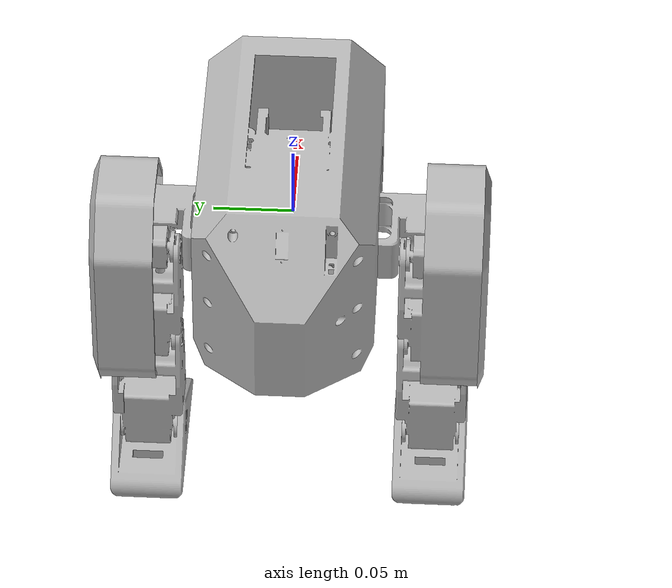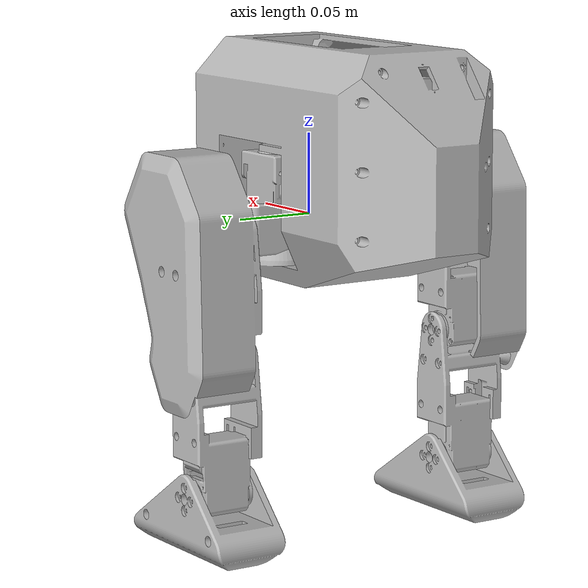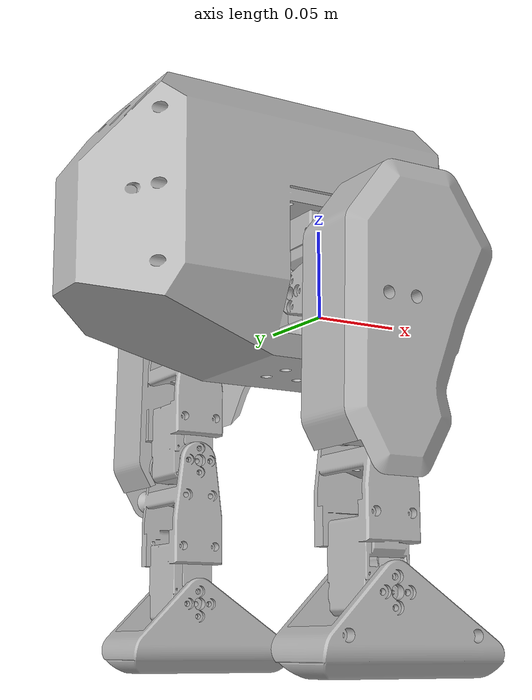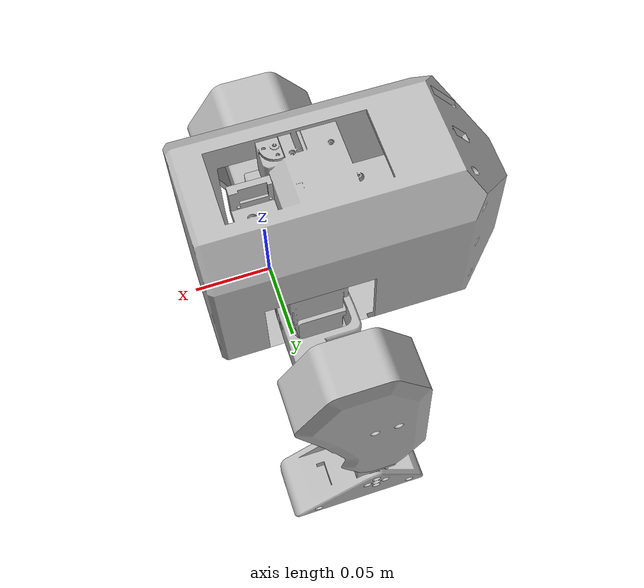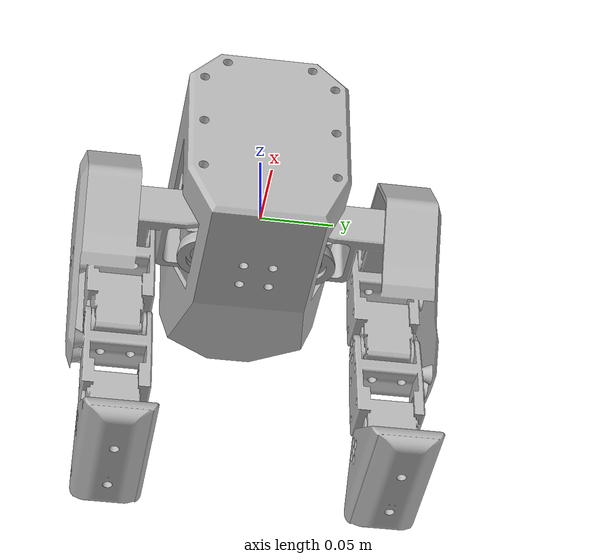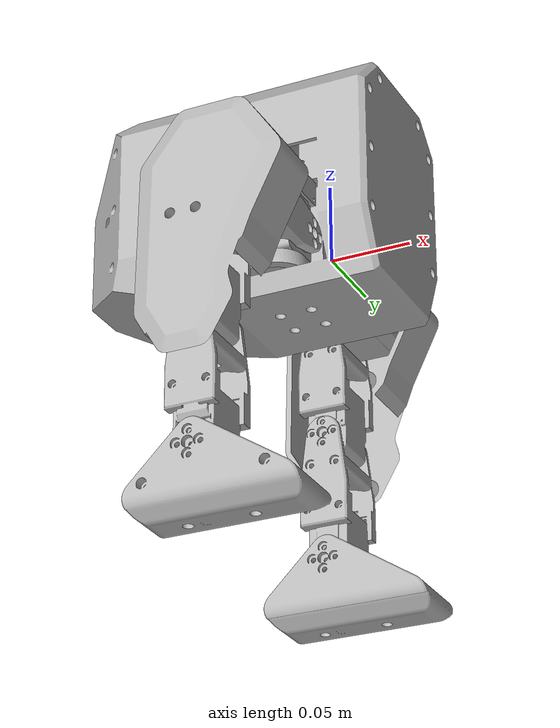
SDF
<?xml version='1.0' encoding='utf-8'?>
<sdf version="1.7">
    <model name="Open_Duck_Mini_Simplified">
        <link name="Base_Link">
            <pose>0.0 0.0 0.0 0.0 -0.0 0.0</pose>
            <inertial>
                <mass>1.9684302519585641</mass>
                <pose>-0.03415259541905878 -2.340412795917269e-05 0.033010995393600875 0.0 0.0 0.0</pose>
                <inertia>
                    <ixx>0.005121034980046357</ixx>
                    <iyy>0.010241211931603489</iyy>
                    <izz>0.008460065395761338</izz>
                    <ixy>-4.522829560938849e-06</ixy>
                    <iyz>2.7747950485370167e-06</iyz>
                    <ixz>0.0003671159147792206</ixz>
                </inertia>
            </inertial>
            <visual name="Base_Link_visual">
                <geometry>
                    <mesh>
                        <uri>model://Open_Duck_Mini_Simplified/meshes/Base_Link.stl</uri>
                        <scale>0.001 0.001 0.001</scale>
                    </mesh>
                </geometry>
            </visual>
            <collision name="Base_Link_collision">
                <geometry>
                    <mesh>
                        <uri>model://Open_Duck_Mini_Simplified/meshes/Base_Link.stl</uri>
                        <scale>0.001 0.001 0.001</scale>
                    </mesh>
                </geometry>
            </collision>
        </link>
        <link name="L_Thigh">
            <pose>-0.0038000000000000347 5.329070518200751e-17 -1.35229501208034e-14 1.8915628313209683e-13 -0.0 0.0</pose>
            <inertial>
                <mass>0.25937750260452785</mass>
                <pose>-0.031032448659312515 0.1035388204097626 -0.021371552287224056 0.0 0.0 0.0</pose>
                <inertia>
                    <ixx>0.0004342529486771238</ixx>
                    <iyy>0.0005023439614216825</iyy>
                    <izz>0.00021708001902644397</izz>
                    <ixy>-8.27726818247285e-06</ixy>
                    <iyz>-1.5499027702165054e-05</iyz>
                    <ixz>-7.213181055005393e-05</ixz>
                </inertia>
            </inertial>
            <visual name="L_Thigh_visual">
                <geometry>
                    <mesh>
                        <uri>model://Open_Duck_Mini_Simplified/meshes/L_Thigh.stl</uri>
                        <scale>0.001 0.001 0.001</scale>
                    </mesh>
                </geometry>
            </visual>
            <collision name="L_Thigh_collision">
                <geometry>
                    <mesh>
                        <uri>model://Open_Duck_Mini_Simplified/meshes/L_Thigh.stl</uri>
                        <scale>0.001 0.001 0.001</scale>
                    </mesh>
                </geometry>
            </collision>
        </link>
        <link name="L_Feet">
            <pose>-0.0037999999999840206 0.0002999999999885983 -3.838707129943941e-14 4.2186868312581586e-13 -0.0 0.0</pose>
            <inertial>
                <mass>0.26831438389665163</mass>
                <pose>-0.024065628437512216 0.0908422823263262 -0.18097719336339996 0.0 0.0 0.0</pose>
                <inertia>
                    <ixx>7.498489913570529e-05</ixx>
                    <iyy>0.000221367829430008</iyy>
                    <izz>0.00024945365153443747</izz>
                    <ixy>-2.0601914103554346e-07</ixy>
                    <iyz>7.343370472097901e-07</iyz>
                    <ixz>6.406580974771667e-06</ixz>
                </inertia>
            </inertial>
            <visual name="L_Feet_visual">
                <geometry>
                    <mesh>
                        <uri>model://Open_Duck_Mini_Simplified/meshes/L_Feet.stl</uri>
                        <scale>0.001 0.001 0.001</scale>
                    </mesh>
                </geometry>
            </visual>
            <collision name="L_Feet_collision">
                <geometry>
                    <mesh>
                        <uri>model://Open_Duck_Mini_Simplified/meshes/L_Feet.stl</uri>
                        <scale>0.001 0.001 0.001</scale>
                    </mesh>
                </geometry>
            </collision>
        </link>
        <link name="L_Shin">
            <pose>-0.0037999999999920454 0.0002499999999993552 -2.531308496145357e-14 3.0551731014508e-13 -0.0 0.0</pose>
            <inertial>
                <mass>0.0879638629775456</mass>
                <pose>-0.035062747188262 0.0903855262511664 -0.11582420003230887 0.0 0.0 0.0</pose>
                <inertia>
                    <ixx>7.936709900427646e-05</ixx>
                    <iyy>6.174524754732795e-05</iyy>
                    <izz>3.072522125902017e-05</izz>
                    <ixy>8.704058561309926e-09</ixy>
                    <iyz>-2.0329438509603343e-06</iyz>
                    <ixz>1.1490857693420855e-08</ixz>
                </inertia>
            </inertial>
            <visual name="L_Shin_visual">
                <geometry>
                    <mesh>
                        <uri>model://Open_Duck_Mini_Simplified/meshes/L_Shin.stl</uri>
                        <scale>0.001 0.001 0.001</scale>
                    </mesh>
                </geometry>
            </visual>
            <collision name="L_Shin_collision">
                <geometry>
                    <mesh>
                        <uri>model://Open_Duck_Mini_Simplified/meshes/L_Shin.stl</uri>
                        <scale>0.001 0.001 0.001</scale>
                    </mesh>
                </geometry>
            </collision>
        </link>
        <link name="L_hip_Roll2Pitch">
            <pose>0.0 0.0 0.0 0.0 -0.0 0.0</pose>
            <inertial>
                <mass>0.10602697627624531</mass>
                <pose>-0.014818719999186636 0.07566773372494888 0.0011484913220371664 0.0 0.0 0.0</pose>
                <inertia>
                    <ixx>5.423033438519949e-05</ixx>
                    <iyy>3.7112765734958914e-05</iyy>
                    <izz>7.38279563391466e-05</izz>
                    <ixy>-4.154739662831365e-06</ixy>
                    <iyz>-1.7824625751742564e-06</iyz>
                    <ixz>2.752004454686599e-07</ixz>
                </inertia>
            </inertial>
            <visual name="L_hip_Roll2Pitch_visual">
                <geometry>
                    <mesh>
                        <uri>model://Open_Duck_Mini_Simplified/meshes/L_hip_Roll2Pitch.stl</uri>
                        <scale>0.001 0.001 0.001</scale>
                    </mesh>
                </geometry>
            </visual>
            <collision name="L_hip_Roll2Pitch_collision">
                <geometry>
                    <mesh>
                        <uri>model://Open_Duck_Mini_Simplified/meshes/L_hip_Roll2Pitch.stl</uri>
                        <scale>0.001 0.001 0.001</scale>
                    </mesh>
                </geometry>
            </collision>
        </link>
        <link name="R_Thigh">
            <pose>0.0 0.0 0.0 0.0 -0.0 0.0</pose>
            <inertial>
                <mass>0.2593775026043108</mass>
                <pose>-0.031032448659315325 -0.10353882040975323 -0.02137155228720713 0.0 0.0 0.0</pose>
                <inertia>
                    <ixx>0.00043425294867627164</ixx>
                    <iyy>0.0005023439614215467</iyy>
                    <izz>0.0002170800190252815</izz>
                    <ixy>8.277268182463869e-06</ixy>
                    <iyz>1.5499027702213226e-05</iyz>
                    <ixz>-7.213181055006651e-05</ixz>
                </inertia>
            </inertial>
            <visual name="R_Thigh_visual">
                <geometry>
                    <mesh>
                        <uri>model://Open_Duck_Mini_Simplified/meshes/R_Thigh.stl</uri>
                        <scale>0.001 0.001 0.001</scale>
                    </mesh>
                </geometry>
            </visual>
            <collision name="R_Thigh_collision">
                <geometry>
                    <mesh>
                        <uri>model://Open_Duck_Mini_Simplified/meshes/R_Thigh.stl</uri>
                        <scale>0.001 0.001 0.001</scale>
                    </mesh>
                </geometry>
            </collision>
        </link>
        <link name="R_hip_Roll2Pitch">
            <pose>0.0 0.0 0.0 0.0 -0.0 0.0</pose>
            <inertial>
                <mass>0.1060269762762521</mass>
                <pose>-0.014818719999185883 -0.07566773372495088 0.0011484913220383955 0.0 0.0 0.0</pose>
                <inertia>
                    <ixx>5.423033438520307e-05</ixx>
                    <iyy>3.7112765734963725e-05</iyy>
                    <izz>7.382795633916351e-05</izz>
                    <ixy>4.154739662834441e-06</ixy>
                    <iyz>1.7824625751777682e-06</iyz>
                    <ixz>2.7520044546570946e-07</ixz>
                </inertia>
            </inertial>
            <visual name="R_hip_Roll2Pitch_visual">
                <geometry>
                    <mesh>
                        <uri>model://Open_Duck_Mini_Simplified/meshes/R_hip_Roll2Pitch.stl</uri>
                        <scale>0.001 0.001 0.001</scale>
                    </mesh>
                </geometry>
            </visual>
            <collision name="R_hip_Roll2Pitch_collision">
                <geometry>
                    <mesh>
                        <uri>model://Open_Duck_Mini_Simplified/meshes/R_hip_Roll2Pitch.stl</uri>
                        <scale>0.001 0.001 0.001</scale>
                    </mesh>
                </geometry>
            </collision>
        </link>
        <link name="R_Shin">
            <pose>7.989164885202627e-15 -0.000249999999999293 -1.183941833460267e-14 -1.1636102701298318e-13 -0.0 0.0</pose>
            <inertial>
                <mass>0.08796386297749642</mass>
                <pose>-0.03506274718826922 -0.09038552625115734 -0.11582420003230408 0.0 0.0 0.0</pose>
                <inertia>
                    <ixx>7.936709900426562e-05</ixx>
                    <iyy>6.174524754731767e-05</iyy>
                    <izz>3.072522125900183e-05</izz>
                    <ixy>-8.70405857041505e-09</ixy>
                    <iyz>2.0329438509808126e-06</iyz>
                    <ixz>1.1490857689465163e-08</ixz>
                </inertia>
            </inertial>
            <visual name="R_Shin_visual">
                <geometry>
                    <mesh>
                        <uri>model://Open_Duck_Mini_Simplified/meshes/R_Shin.stl</uri>
                        <scale>0.001 0.001 0.001</scale>
                    </mesh>
                </geometry>
            </visual>
            <collision name="R_Shin_collision">
                <geometry>
                    <mesh>
                        <uri>model://Open_Duck_Mini_Simplified/meshes/R_Shin.stl</uri>
                        <scale>0.001 0.001 0.001</scale>
                    </mesh>
                </geometry>
            </collision>
        </link>
        <link name="L_hip_roll">
            <pose>2.997602166487923e-16 -8.881784197001253e-18 -0.00020000000000120366 0.0 -0.0 0.0</pose>
            <inertial>
                <mass>0.1492490667349632</mass>
                <pose>-0.018876389938795472 0.03499999064295626 0.014424147719492868 0.0 0.0 0.0</pose>
                <inertia>
                    <ixx>5.607804841261871e-05</ixx>
                    <iyy>6.0621169396812564e-05</iyy>
                    <izz>2.33776428469934e-05</izz>
                    <ixy>-1.5399447721772125e-11</ixy>
                    <iyz>2.6498957935165886e-11</iyz>
                    <ixz>-4.965259153638467e-08</ixz>
                </inertia>
            </inertial>
            <visual name="L_hip_roll_visual">
                <geometry>
                    <mesh>
                        <uri>model://Open_Duck_Mini_Simplified/meshes/L_hip_roll.stl</uri>
                        <scale>0.001 0.001 0.001</scale>
                    </mesh>
                </geometry>
            </visual>
            <collision name="L_hip_roll_collision">
                <geometry>
                    <mesh>
                        <uri>model://Open_Duck_Mini_Simplified/meshes/L_hip_roll.stl</uri>
                        <scale>0.001 0.001 0.001</scale>
                    </mesh>
                </geometry>
            </collision>
        </link>
        <link name="R_Feet">
            <pose>1.601385690719326e-14 -0.000299999999988545 -2.4851232183209504e-14 -2.3271239999371905e-13 -0.0 0.0</pose>
            <inertial>
                <mass>0.2683143838971043</mass>
                <pose>-0.02406562843767208 -0.09084228232630734 -0.1809771933634124 0.0 0.0 0.0</pose>
                <inertia>
                    <ixx>7.49848991448334e-05</ixx>
                    <iyy>0.00022136782943110408</iyy>
                    <izz>0.00024945365153563475</izz>
                    <ixy>2.0601914177867484e-07</ixy>
                    <iyz>-7.343370471775893e-07</iyz>
                    <ixz>6.406580974430755e-06</ixz>
                </inertia>
            </inertial>
            <visual name="R_Feet_visual">
                <geometry>
                    <mesh>
                        <uri>model://Open_Duck_Mini_Simplified/meshes/R_Feet.stl</uri>
                        <scale>0.001 0.001 0.001</scale>
                    </mesh>
                </geometry>
            </visual>
            <collision name="R_Feet_collision">
                <geometry>
                    <mesh>
                        <uri>model://Open_Duck_Mini_Simplified/meshes/R_Feet.stl</uri>
                        <scale>0.001 0.001 0.001</scale>
                    </mesh>
                </geometry>
            </collision>
        </link>
        <link name="R_hip_roll">
            <pose>2.997602166487923e-16 0.0 -0.00020000000000120366 0.0 -0.0 0.0</pose>
            <inertial>
                <mass>0.1492490671539157</mass>
                <pose>-0.018876389988406708 -0.034999973867759014 0.01442414774490302 0.0 0.0 0.0</pose>
                <inertia>
                    <ixx>5.607804847161633e-05</ixx>
                    <iyy>6.06211695731254e-05</iyy>
                    <izz>2.337764299167476e-05</izz>
                    <ixy>5.642952350239181e-11</ixy>
                    <iyz>-3.080540382787052e-11</iyz>
                    <ixz>-4.9652523698044476e-08</ixz>
                </inertia>
            </inertial>
            <visual name="R_hip_roll_visual">
                <geometry>
                    <mesh>
                        <uri>model://Open_Duck_Mini_Simplified/meshes/R_hip_roll.stl</uri>
                        <scale>0.001 0.001 0.001</scale>
                    </mesh>
                </geometry>
            </visual>
            <collision name="R_hip_roll_collision">
                <geometry>
                    <mesh>
                        <uri>model://Open_Duck_Mini_Simplified/meshes/R_hip_roll.stl</uri>
                        <scale>0.001 0.001 0.001</scale>
                    </mesh>
                </geometry>
            </collision>
        </link>
        <joint name="Base_Link_Revolute-1" type="revolute">
            <pose>-0.019000000000000298 0.03500000000000001 -0.013183999999998796 0.0 0.0 0.0</pose>
            <parent>Base_Link</parent>
            <child>L_hip_roll</child>
            <axis>
                <xyz expressed_in="__model__">0.0 0.0 1.0</xyz>
            </axis>
        </joint>
        <joint name="Base_Link_Revolute-2" type="revolute">
            <pose>-0.019000000000000298 -0.035 -0.013183999999998796 0.0 0.0 0.0</pose>
            <parent>Base_Link</parent>
            <child>R_hip_roll</child>
            <axis>
                <xyz expressed_in="__model__">0.0 0.0 1.0</xyz>
            </axis>
        </joint>
        <joint name="R_hip_roll_Revolute-3" type="revolute">
            <pose>-0.0368 -0.035 -7.4e-05 0.0 0.0 0.0</pose>
            <parent>R_hip_roll</parent>
            <child>R_hip_Roll2Pitch</child>
            <axis>
                <xyz expressed_in="__model__">-1.0 0.0 0.0</xyz>
            </axis>
        </joint>
        <joint name="L_hip_roll_Revolute-4" type="revolute">
            <pose>-0.0368 0.035 -7.4e-05 0.0 0.0 0.0</pose>
            <parent>L_hip_roll</parent>
            <child>L_hip_Roll2Pitch</child>
            <axis>
                <xyz expressed_in="__model__">-1.0 0.0 0.0</xyz>
            </axis>
        </joint>
        <joint name="L_hip_Roll2Pitch_Revolute-5" type="revolute">
            <pose>-0.03125999999999997 0.07204999999999993 -7.400000000010575e-05 0.0 0.0 0.0</pose>
            <parent>L_hip_Roll2Pitch</parent>
            <child>L_Thigh</child>
            <axis>
                <xyz expressed_in="__model__">0.0 1.0 0.0</xyz>
            </axis>
        </joint>
        <joint name="R_hip_Roll2Pitch_Revolute-6" type="revolute">
            <pose>-0.03506 -0.07205 -7.4e-05 0.0 0.0 0.0</pose>
            <parent>R_hip_Roll2Pitch</parent>
            <child>R_Thigh</child>
            <axis>
                <xyz expressed_in="__model__">-0.0 1.0 -0.0</xyz>
            </axis>
        </joint>
        <joint name="R_Thigh_Revolute-7" type="revolute">
            <pose>-0.03506000000000799 -0.07204999999999198 -0.07507399999999655 0.0 0.0 0.0</pose>
            <parent>R_Thigh</parent>
            <child>R_Shin</child>
            <axis>
                <xyz expressed_in="__model__">0.0 1.0 -0.0</xyz>
            </axis>
        </joint>
        <joint name="L_Thigh_Revolute-8" type="revolute">
            <pose>-0.03506000000000795 0.0720499999999777 -0.0750739999999967 0.0 0.0 0.0</pose>
            <parent>L_Thigh</parent>
            <child>L_Shin</child>
            <axis>
                <xyz expressed_in="__model__">-0.0 1.0 0.0</xyz>
            </axis>
        </joint>
        <joint name="R_Shin_Revolute-9" type="revolute">
            <pose>-0.035060000000016016 -0.07224999999997483 -0.157373999999992 0.0 0.0 0.0</pose>
            <parent>R_Shin</parent>
            <child>R_Feet</child>
            <axis>
                <xyz expressed_in="__model__">0.0 1.0 -0.0</xyz>
            </axis>
        </joint>
        <joint name="L_Shin_Revolute-10" type="revolute">
            <pose>-0.03506000000001598 0.07224999999994501 -0.1573739999999921 0.0 0.0 0.0</pose>
            <parent>L_Shin</parent>
            <child>L_Feet</child>
            <axis>
                <xyz expressed_in="__model__">-0.0 1.0 0.0</xyz>
            </axis>
        </joint>
    </model>
</sdf>
